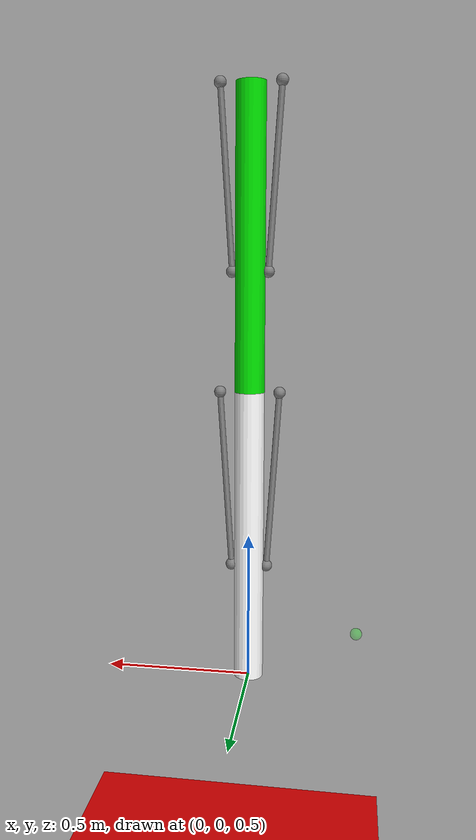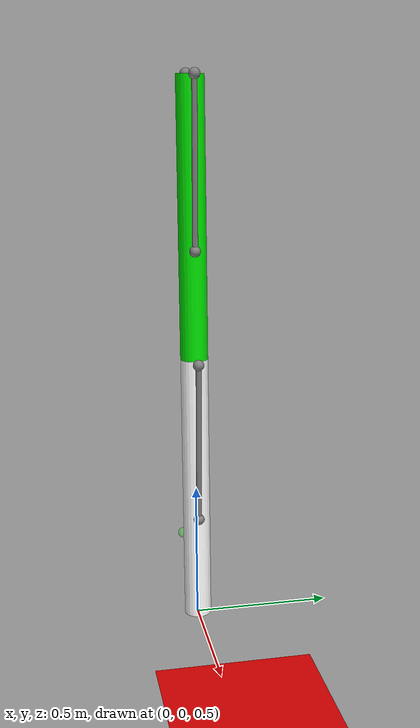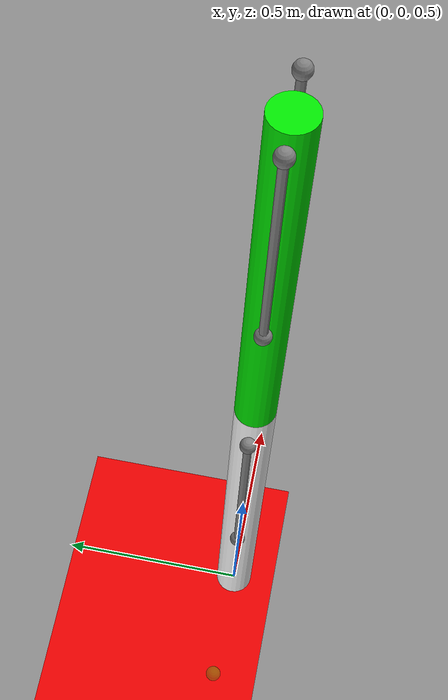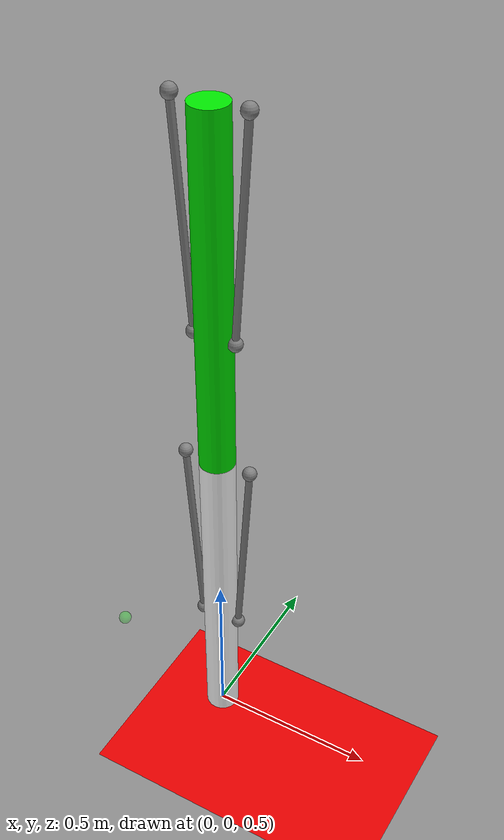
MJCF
<mujoco>
    <!-- min distance from root to endfactor is 1.766, max is 2 -->
    <option timestep="0.005">
		<flag gravity="disable"/>
	</option>
    <size nuserdata="3"/>
   <worldbody>
      <light diffuse=".5 .5 .5" pos="0 0 3" dir="0 0 -1"/>
      <geom type="plane" size="1 1 0.1" rgba=".9 0 0 1"/>
      <!-- pos="0.76 0 0.65"  -->
      <site name="target1" pos="-0.37071697 0 0.67119577" size="0.02" rgba="0 1 0 .3"/>

      <site name="s0" pos="0.1 0 2.5" size="0.02"/>
      <site name="s2" pos="-0.1 0 2.5" size="0.02"/>
      <body pos="0 0 1.5" euler="0 0 0">
         <joint name="joint0" type="hinge" axis="0 -1 0" pos="0 0 1" damping="0.001" limited="true" range="-56 56"/>
         <geom name="link0" type="cylinder" pos="0 0 0.5" size="0.05 .5" rgba="0 .9 0 1" mass="1"/>
         <site name="s1" pos="0.06 0 0.4" size="0.02"/>
         <site name="s3" pos="-0.06 0 0.4" size="0.02"/>
         <site name="s4" pos="0.1 0 0" size="0.02"/>
         <site name="s5" pos="-0.1 0 0" size="0.02"/>
         <body pos="0 0 -1" euler="0 0 0">
            <joint name="joint1" type="hinge" axis="0 -1 0" pos="0 0 1" damping="0.001" limited="true" range="-56 56"/>
            <geom name="link1" pos="0 0 0.5" type="cylinder" size="0.05 .5" rgba="1 1 1 1" mass="1"/>
            <site name="s6" pos="0.06 0 0.4" size="0.02"/>
            <site name="s7" pos="-0.06 0 0.4" size="0.02"/>
         </body>
      </body>
   </worldbody>
   <tendon>
       <spatial name="r-tendon" width="0.01">
            <site site="s0"/>
            <site site="s1"/>
       </spatial>
   </tendon>
   <tendon>
       <spatial name="l-tendon" width="0.01">
            <site site="s2"/>
            <site site="s3"/>
       </spatial>
   </tendon>
    <tendon>
       <spatial name="r-middle" width="0.01">
            <site site="s4"/>
            <site site="s6"/>
       </spatial>
   </tendon>
   <tendon>
       <spatial name="l-middle" width="0.01">
            <site site="s5"/>
            <site site="s7"/>
       </spatial>
   </tendon>
   <actuator>
        <muscle  name="r-muscle" tendon="r-tendon" range="0.75 1.15" scale="400"/>
        <muscle  name="l-muscle" tendon="l-tendon" range="0.75 1.15" scale="400"/>
        <muscle  name="r-ctrl" tendon="r-middle" range="0.75 1.15" scale="400"/>
        <muscle  name="l-ctrl" tendon="l-middle" range="0.75 1.15" scale="400"/>
        <motor name="motor0" joint="joint0" ctrllimited="true" ctrlrange="-8 8"/>
        <motor name="motor1" joint="joint1" ctrllimited="true" ctrlrange="-8 8"/>
   </actuator>
</mujoco>
